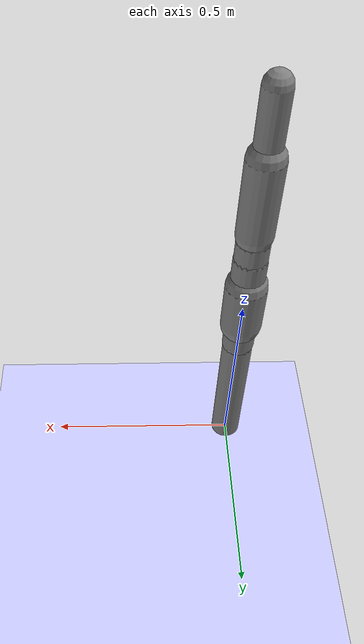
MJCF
<?xml version='1.0' encoding='UTF-8'?>
<mujoco model="robot_model">
  <worldbody>
    <light name="light" pos="0 -3 10" dir="0 0.5 -1" diffuse=".8 .8 .8" specular="0.1 0.1 0.1"/>
    <geom name="floor" type="plane" size="10.0 10.0 0.1" pos="0 0 0" rgba="0.8 0.8 1 1" contype="2" conaffinity="1"/>
    <body name="limb0" pos="0 0 0">
      <geom type="capsule" fromto="0 0 0 0 0 0.47805311459658134" size="0.04" density="1128.8080287950745" contype="1" conaffinity="2"/>
      <site type="sphere" size="0.01" name="limb0_site0" pos="0 0 0.2757924956263021"/>
      <site type="sphere" size="0.01" name="limb0_site1" pos="0 0 0.4501855606858348"/>
      <freejoint name="limb0_root"/>
      <body name="limb1" pos="0 0 0.2757924956263021">
        <geom type="capsule" fromto="0 0 0 0 0 0.2639757366326131" size="0.03303782304059255" density="616.6153958948047" contype="1" conaffinity="2"/>
        <site type="sphere" size="0.01" name="limb1_site0" pos="0 0 0.16469519644951955"/>
        <site type="sphere" size="0.01" name="limb1_site1" pos="0 0 0.10105994540977413"/>
        <site type="sphere" size="0.01" name="limb1_site2" pos="0 0 0.2535922209205287"/>
        <body name="limb2" pos="0 0 0.16469519644951955">
          <geom type="capsule" fromto="0 0 0 0 0 0.22679137695387722" size="0.04299638700720089" density="739.7050499872612" contype="1" conaffinity="2"/>
          <joint name="joint_limb1_limb2_0" type="hinge" axis="0 1 0" range="-79.19027832141104 79.19027832141104" damping="5.0"/>
        </body>
        <body name="limb3" pos="0 0 0.10105994540977413">
          <geom type="capsule" fromto="0 0 0 0 0 0.3449366956007403" size="0.04182995516077146" density="888.638751137447" contype="1" conaffinity="2"/>
          <site type="sphere" size="0.01" name="limb3_site0" pos="0 0 0.34476469369601037"/>
          <site type="sphere" size="0.01" name="limb3_site1" pos="0 0 0.197693734804722"/>
          <site type="sphere" size="0.01" name="limb3_site2" pos="0 0 0.22417686865828207"/>
          <body name="limb4" pos="0 0 0.34476469369601037">
            <geom type="capsule" fromto="0 0 0 0 0 0.38689637571819735" size="0.03296585503229504" density="787.6117064878987" contype="1" conaffinity="2"/>
            <joint name="joint_limb3_limb4_0" type="hinge" axis="0 1 0" range="-97.60316524447805 97.60316524447805" damping="5.0"/>
          </body>
          <body name="limb5" pos="0 0 0.197693734804722">
            <geom type="capsule" fromto="0 0 0 0 0 0.1209611644315948" size="0.020475413601167402" density="418.52899181852035" contype="1" conaffinity="2"/>
            <joint name="joint_limb3_limb5_0" type="hinge" axis="0 1 0" range="-98.74425114599552 98.74425114599552" damping="5.0"/>
          </body>
          <body name="limb6" pos="0 0 0.22417686865828207">
            <geom type="capsule" fromto="0 0 0 0 0 0.2102868528065015" size="0.03451406520881031" density="566.487314585425" contype="1" conaffinity="2"/>
            <joint name="joint_limb3_limb6_0" type="hinge" axis="0 1 0" range="-97.4408151263812 97.4408151263812" damping="5.0"/>
          </body>
          <joint name="joint_limb1_limb3_0" type="hinge" axis="0 1 0" range="-81.36051586401729 81.36051586401729" damping="5.0"/>
        </body>
        <body name="limb7" pos="0 0 0.2535922209205287">
          <geom type="capsule" fromto="0 0 0 0 0 0.4886525017141072" size="0.02730849030649112" density="1118.1587480940386" contype="1" conaffinity="2"/>
          <site type="sphere" size="0.01" name="limb7_site0" pos="0 0 0.2148602362279738"/>
          <site type="sphere" size="0.01" name="limb7_site1" pos="0 0 0.2502629485534305"/>
          <body name="limb8" pos="0 0 0.2148602362279738">
            <geom type="capsule" fromto="0 0 0 0 0 0.19942307054689806" size="0.04609395862756084" density="1147.4288306062897" contype="1" conaffinity="2"/>
            <joint name="joint_limb7_limb8_0" type="hinge" axis="0 0 1" range="-97.3556228309299 97.3556228309299" damping="5.0"/>
          </body>
          <body name="limb9" pos="0 0 0.2502629485534305">
            <geom type="capsule" fromto="0 0 0 0 0 0.1" size="0.02258212688075009" density="794.8277341934504" contype="1" conaffinity="2"/>
            <joint name="joint_limb7_limb9_0" type="hinge" axis="1 0 0" range="-42.15190616583611 42.15190616583611" damping="5.0"/>
          </body>
          <joint name="joint_limb1_limb7_0" type="hinge" axis="0 1 0" range="-80.38696577407528 80.38696577407528" damping="5.0"/>
        </body>
        <joint name="joint_limb0_limb1_0" type="hinge" axis="0 1 0" range="-86.88885216162544 86.88885216162544" damping="5.0"/>
      </body>
      <body name="limb10" pos="0 0 0.4501855606858348">
        <geom type="capsule" fromto="0 0 0 0 0 0.13252947652278277" size="0.05372058858359962" density="1100.1826029615775" contype="1" conaffinity="2"/>
        <joint name="joint_limb0_limb10_0" type="hinge" axis="0 1 0" range="-46.186401585393725 46.186401585393725" damping="5.0"/>
      </body>
    </body>
  </worldbody>
  <actuator>
    <position name="position_actuator_joint_limb0_limb1_0" joint="joint_limb0_limb1_0" gear="1.1016923492197717" inheritrange="1" kp="10.0"/>
    <position name="position_actuator_joint_limb1_limb2_0" joint="joint_limb1_limb2_0" gear="1.0104857860709995" inheritrange="1" kp="10.0"/>
    <position name="position_actuator_joint_limb1_limb3_0" joint="joint_limb1_limb3_0" gear="2.0" inheritrange="1" kp="10.0"/>
    <position name="position_actuator_joint_limb3_limb4_0" joint="joint_limb3_limb4_0" gear="1.7459471619076385" inheritrange="1" kp="10.0"/>
    <position name="position_actuator_joint_limb3_limb5_0" joint="joint_limb3_limb5_0" gear="0.6053780887485001" inheritrange="1" kp="10.0"/>
    <position name="position_actuator_joint_limb3_limb6_0" joint="joint_limb3_limb6_0" gear="0.9592737602053503" inheritrange="1" kp="10.0"/>
    <position name="position_actuator_joint_limb1_limb7_0" joint="joint_limb1_limb7_0" gear="1.272740550353963" inheritrange="1" kp="10.0"/>
    <position name="position_actuator_joint_limb7_limb8_0" joint="joint_limb7_limb8_0" gear="1.2514069354827302" inheritrange="1" kp="10.0"/>
    <position name="position_actuator_joint_limb7_limb9_0" joint="joint_limb7_limb9_0" gear="1.5515760021784972" inheritrange="1" kp="10.0"/>
    <position name="position_actuator_joint_limb0_limb10_0" joint="joint_limb0_limb10_0" gear="0.5181521235082891" inheritrange="1" kp="10.0"/>
  </actuator>
</mujoco>
